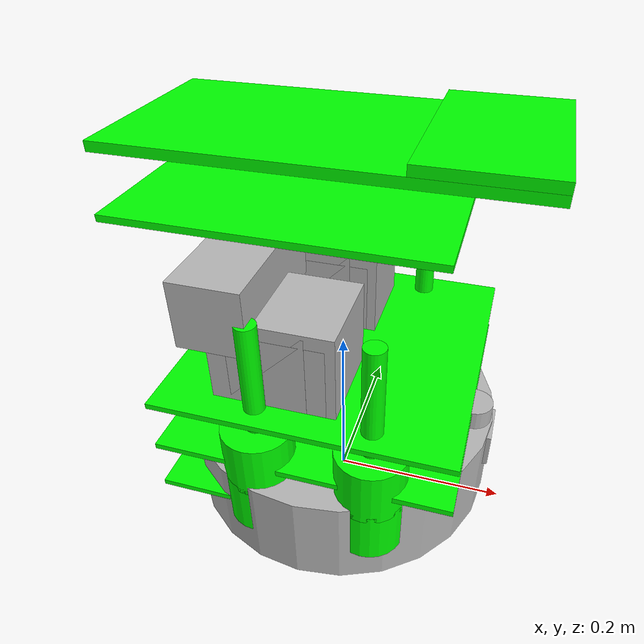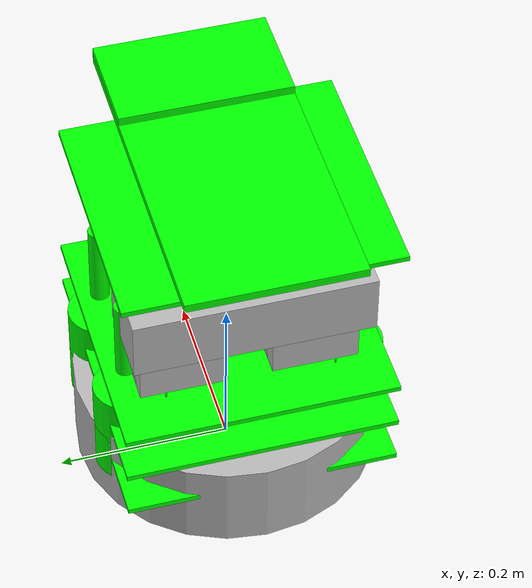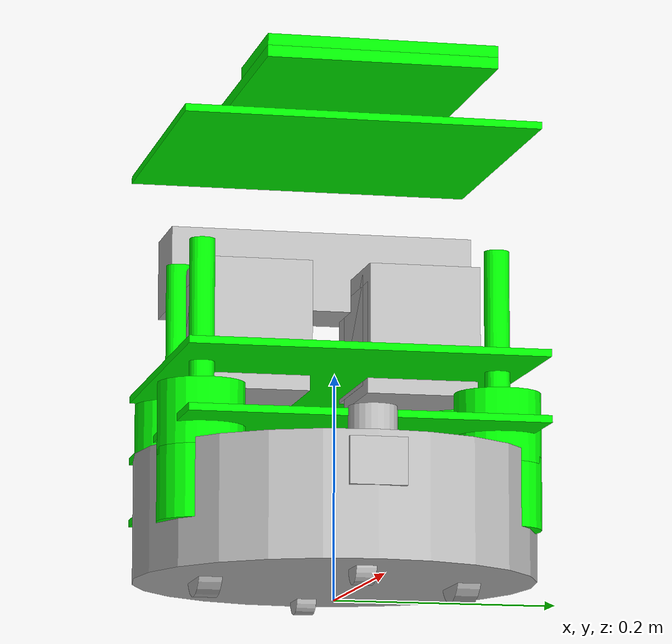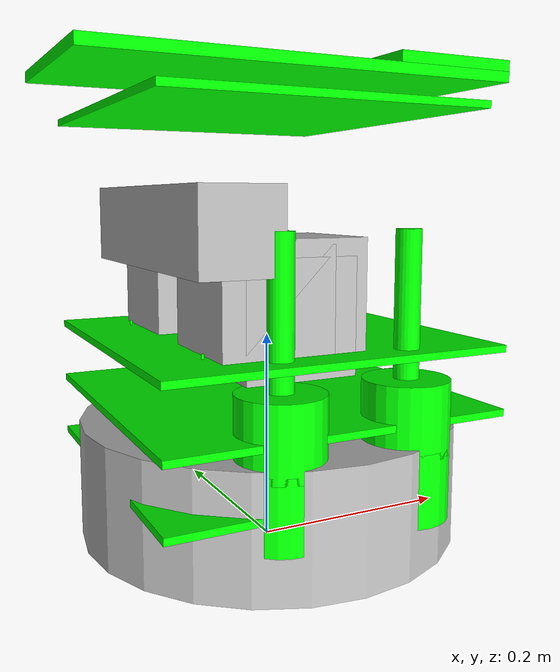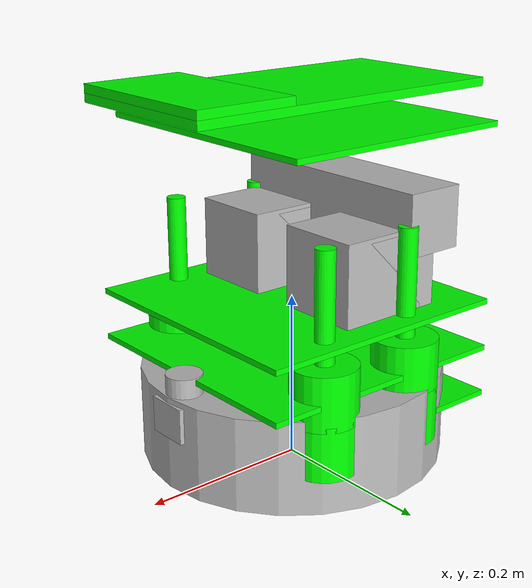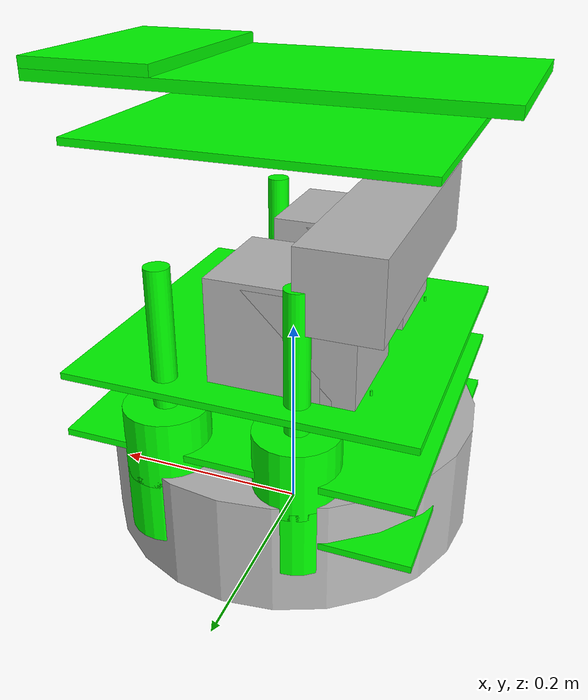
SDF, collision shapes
<?xml version="1.0" ?>
<sdf version="1.5">
  <model name="turtlebot">

    <link name="rack">
      <inertial>
        <pose>0.001453 -0.000453 0.029787 0 0 0</pose>
        <inertia>
          <ixx>0.058640</ixx>
          <ixy>0.000124</ixy>
          <ixz>0.000615</ixz>
          <iyy>0.058786</iyy>
          <iyz>0.000014</iyz>
          <izz>1.532440</izz>
       </inertia>
        <mass>2.234000</mass>
     </inertial>
	<collision name="tag1_collision">
          <pose>0 0 0.44 0 0 0</pose>
          <geometry>
            <box>
                <size>0.4 0.2 0.01</size>
           </box>
         </geometry>
       </collision>
        <visual name="tag1_visual">
          <pose>0 0 0.44 0 0 0</pose>
          <cast_shadows>true</cast_shadows>
          <geometry>
            <box>
                <size>0.4 0.2 0.01</size>
           </box>
         </geometry>
          <material>
            <diffuse>0 1 0 1</diffuse>
         </material>
       </visual>

        <collision name="tag2_collision">
          <pose>0.14 0 0.45 0 0 0</pose>
          <geometry>
            <box>
                <size>0.12 0.2 0.01</size>
           </box>
         </geometry>
       </collision>
        <visual name="tag2_visual">
          <pose>0.14 0 0.45 0 0 0</pose>
          <cast_shadows>true</cast_shadows>
          <geometry>
            <box>
                <size>0.12 0.2 0.01</size>
           </box>
         </geometry>
          <material>
            <diffuse>0 0 1 1</diffuse>
         </material>
       </visual>

      <collision name="plate_0_collision">
        <pose>-0.043340 0 0.084757 0 0 0</pose>
        <geometry>
          <box>
            <size>0.233502 0.314845 0.006401</size>
         </box>
       </geometry>
     </collision>
      <visual name="plate_0_visual">
        <pose>-0.043340 0 0.084757 0 0 0</pose>
        <geometry>
          <mesh>
            <uri>model://turtlebotJde2cam/meshes/plate_0_logo.dae</uri>
         </mesh>
       </geometry>
     </visual>
      <collision name="plate_1_collision">
        <pose>-0.002660 0 0.141907 0 0 0</pose>
        <geometry>
          <box>
            <size>0.314856 0.314856 0.006401</size>
         </box>
       </geometry>
     </collision>
      <visual name="plate_1_visual">
        <pose>-0.002660 0 0.141907 0 0 0</pose>
        <geometry>
          <mesh>
            <uri>model://turtlebotJde2cam/meshes/plate_1_logo.dae</uri>
         </mesh>
       </geometry>
     </visual>
      <collision name="plate_2_collision">
        <pose>-0.002660 0 0.199108 0 0 0</pose>
        <geometry>
          <box>
            <size>0.314856 0.314856 0.006401</size>
         </box>
       </geometry>
     </collision>
      <visual name="plate_2_visual">
        <pose>-0.002660 0 0.199108 0 0 0</pose>
        <geometry>
          <mesh>
            <uri>model://turtlebotJde2cam/meshes/plate_1_logo.dae</uri>
         </mesh>
       </geometry>
     </visual>
      <collision name="plate_3_collision">
        <pose>-0.015820 0 0.405457 0 0 0</pose>
        <geometry>
          <box>
            <size>0.288000 0.315000 0.006401</size>
         </box>
       </geometry>
     </collision>
      <visual name="plate_3_visual">
        <pose>-0.015820 0 0.405457 0 0 0</pose>
        <geometry>
          <mesh>
            <uri>model://turtlebotJde2cam/meshes/plate_2_logo.dae</uri>
         </mesh>
       </geometry>
     </visual>
      <collision name="spacer_0_collision">
        <pose>-0.002540 0.111468 0.079992 0 0 0</pose>
        <geometry>
          <cylinder>
            <radius>0.012700</radius>
            <length>0.003175</length>
         </cylinder>
       </geometry>
     </collision>
      <visual name="spacer_0_visual">
        <pose>-0.002540 0.111468 0.079992 0 0 0</pose>
        <geometry>
          <mesh>
            <uri>model://turtlebotJde2cam/meshes/68-02403-125_Spacer.dae</uri>
         </mesh>
       </geometry>
     </visual>
      <collision name="spacer_1_collision">
        <pose>-0.002540 -0.111468 0.079992 0 0 0</pose>
        <geometry>
          <cylinder>
            <radius>0.012700</radius>
            <length>0.003175</length>
         </cylinder>
       </geometry>
     </collision>
      <visual name="spacer_1_visual">
        <pose>-0.002540 -0.111468 0.079992 0 0 0</pose>
        <geometry>
          <mesh>
            <uri>model://turtlebotJde2cam/meshes/68-02403-125_Spacer.dae</uri>
         </mesh>
       </geometry>
     </visual>
      <collision name="spacer_2_collision">
        <pose>-0.072390 -0.111468 0.079992 0 0 0</pose>
        <geometry>
          <cylinder>
            <radius>0.012700</radius>
            <length>0.003175</length>
         </cylinder>
       </geometry>
     </collision>
      <visual name="spacer_2_visual">
        <pose>-0.072390 -0.111468 0.079992 0 0 0</pose>
        <geometry>
          <mesh>
            <uri>model://turtlebotJde2cam/meshes/68-02403-125_Spacer.dae</uri>
         </mesh>
       </geometry>
     </visual>
      <collision name="spacer_3_collision">
        <pose>-0.072390 0.111468 0.079992 0 0 0</pose>
        <geometry>
          <cylinder>
            <radius>0.012700</radius>
            <length>0.003175</length>
         </cylinder>
       </geometry>
     </collision>
      <visual name="spacer_3_visual">
        <pose>-0.072390 0.111468 0.079992 0 0 0</pose>
        <geometry>
          <mesh>
            <uri>model://turtlebotJde2cam/meshes/68-02403-125_Spacer.dae</uri>
         </mesh>
       </geometry>
     </visual>
      <collision name="standoff_2in_0_collision">
        <pose>0.067640 0.131420 0.087980 0 0 0</pose>
        <geometry>
          <cylinder>
            <radius>0.038100</radius>
            <length>0.063500</length>
         </cylinder>
       </geometry>
     </collision>
      <visual name="standoff_2in_0_visual">
        <pose>0.067640 0.131420 0.087980 0 0 0</pose>
        <geometry>
          <mesh>
            <uri>model://turtlebotJde2cam/meshes/68-04552-2000-RA_Turtlebot_M-F_Standoff.dae</uri>
         </mesh>
       </geometry>
     </visual>
      <collision name="standoff_2in_1_collision">
        <pose>0.067640 -0.131420 0.087980 0 0 0</pose>
        <geometry>
          <cylinder>
            <radius>0.038100</radius>
            <length>0.063500</length>
         </cylinder>
       </geometry>
     </collision>
      <visual name="standoff_2in_1_visual">
        <pose>0.067640 -0.131420 0.087980 0 0 0</pose>
        <geometry>
          <mesh>
            <uri>model://turtlebotJde2cam/meshes/68-04552-2000-RA_Turtlebot_M-F_Standoff.dae</uri>
         </mesh>
       </geometry>
     </visual>
      <collision name="standoff_2in_2_collision">
        <pose>-0.052832 -0.131420 0.087980 0 0 0</pose>
        <geometry>
          <cylinder>
            <radius>0.038100</radius>
            <length>0.063500</length>
         </cylinder>
       </geometry>
     </collision>
      <visual name="standoff_2in_2_visual">
        <pose>-0.052832 -0.131420 0.087980 0 0 0</pose>
        <geometry>
          <mesh>
            <uri>model://turtlebotJde2cam/meshes/68-04552-2000-RA_Turtlebot_M-F_Standoff.dae</uri>
         </mesh>
       </geometry>
     </visual>
      <collision name="standoff_2in_3_collision">
        <pose>-0.052832 0.131420 0.087980 0 0 0</pose>
        <geometry>
          <cylinder>
            <radius>0.038100</radius>
            <length>0.063500</length>
         </cylinder>
       </geometry>
     </collision>
      <visual name="standoff_2in_3_visual">
        <pose>-0.052832 0.131420 0.087980 0 0 0</pose>
        <geometry>
          <mesh>
            <uri>model://turtlebotJde2cam/meshes/68-04552-2000-RA_Turtlebot_M-F_Standoff.dae</uri>
         </mesh>
       </geometry>
     </visual>
      <collision name="standoff_2in_4_collision">
        <pose>0.067640 0.131420 0.145130 0 0 0</pose>
        <geometry>
          <cylinder>
            <radius>0.038100</radius>
            <length>0.063500</length>
         </cylinder>
       </geometry>
     </collision>
      <visual name="standoff_2in_4_visual">
        <pose>0.067640 0.131420 0.145130 0 0 0</pose>
        <geometry>
          <mesh>
            <uri>model://turtlebotJde2cam/meshes/68-04552-2000-RA_Turtlebot_M-F_Standoff.dae</uri>
         </mesh>
       </geometry>
     </visual>
      <collision name="standoff_2in_5_collision">
        <pose>0.067640 -0.131420 0.145130 0 0 0</pose>
        <geometry>
          <cylinder>
            <radius>0.038100</radius>
            <length>0.063500</length>
         </cylinder>
       </geometry>
     </collision>
      <visual name="standoff_2in_5_visual">
        <pose>0.067640 -0.131420 0.145130 0 0 0</pose>
        <geometry>
          <mesh>
            <uri>model://turtlebotJde2cam/meshes/68-04552-2000-RA_Turtlebot_M-F_Standoff.dae</uri>
         </mesh>
       </geometry>
     </visual>
      <collision name="standoff_2in_6_collision">
        <pose>-0.052832 -0.131420 0.145130 0 0 0</pose>
        <geometry>
          <cylinder>
            <radius>0.038100</radius>
            <length>0.063500</length>
         </cylinder>
       </geometry>
     </collision>
      <visual name="standoff_2in_6_visual">
        <pose>-0.052832 -0.131420 0.145130 0 0 0</pose>
        <geometry>
          <mesh>
            <uri>model://turtlebotJde2cam/meshes/68-04552-2000-RA_Turtlebot_M-F_Standoff.dae</uri>
         </mesh>
       </geometry>
     </visual>
      <collision name="standoff_2in_7_collision">
        <pose>-0.052832 0.131420 0.145130 0 0 0</pose>
        <geometry>
          <cylinder>
            <radius>0.038100</radius>
            <length>0.063500</length>
         </cylinder>
       </geometry>
     </collision>
      <visual name="standoff_2in_7_visual">
        <pose>-0.052832 0.131420 0.145130 0 0 0</pose>
        <geometry>
          <mesh>
            <uri>model://turtlebotJde2cam/meshes/68-04552-2000-RA_Turtlebot_M-F_Standoff.dae</uri>
         </mesh>
       </geometry>
     </visual>
      <collision name="standoff_8in_0_collision">
        <pose>0.067640 0.131420 0.202280 0 0 0</pose>
        <geometry>
          <cylinder>
            <radius>0.011113</radius>
            <length>0.203200</length>
         </cylinder>
       </geometry>
     </collision>
      <visual name="standoff_8in_0_visual">
        <pose>0.067640 0.131420 0.202280 0 0 0</pose>
        <geometry>
          <mesh>
            <uri>model://turtlebotJde2cam/meshes/68-02421-8000-RA_Turtlebot_F-F_Standoff.dae</uri>
         </mesh>
       </geometry>
     </visual>
      <collision name="standoff_8in_1_collision">
        <pose>0.067640 -0.131420 0.202280 0 0 0</pose>
        <geometry>
          <cylinder>
            <radius>0.011113</radius>
            <length>0.203200</length>
         </cylinder>
       </geometry>
     </collision>
      <visual name="standoff_8in_1_visual">
        <pose>0.067640 -0.131420 0.202280 0 0 0</pose>
        <geometry>
          <mesh>
            <uri>model://turtlebotJde2cam/meshes/68-02421-8000-RA_Turtlebot_F-F_Standoff.dae</uri>
         </mesh>
       </geometry>
     </visual>
      <collision name="standoff_8in_2_collision">
        <pose>-0.052832 -0.131420 0.202280 0 0 0</pose>
        <geometry>
          <cylinder>
            <radius>0.011113</radius>
            <length>0.203200</length>
         </cylinder>
       </geometry>
     </collision>
      <visual name="standoff_8in_2_visual">
        <pose>-0.052832 -0.131420 0.202280 0 0 0</pose>
        <geometry>
          <mesh>
            <uri>model://turtlebotJde2cam/meshes/68-02421-8000-RA_Turtlebot_F-F_Standoff.dae</uri>
         </mesh>
       </geometry>
     </visual>
      <collision name="standoff_8in_3_collision">
        <pose>-0.052832 0.131420 0.202280 0 0 0</pose>
        <geometry>
          <cylinder>
            <radius>0.011113</radius>
            <length>0.203200</length>
         </cylinder>
       </geometry>
     </collision>
      <visual name="standoff_8in_3_visual">
        <pose>-0.052832 0.131420 0.202280 0 0 0</pose>
        <geometry>
          <mesh>
            <uri>model://turtlebotJde2cam/meshes/68-02421-8000-RA_Turtlebot_F-F_Standoff.dae</uri>
         </mesh>
       </geometry>
     </visual>
      <collision name="standoff_kinect_0_collision">
        <pose>-0.105098 0.098000 0.202308 0 0 0</pose>
        <geometry>
          <cylinder>
            <radius>0.001111</radius>
            <length>0.008585</length>
         </cylinder>
       </geometry>
     </collision>
      <visual name="standoff_kinect_0_visual">
        <pose>-0.105098 0.098000 0.202308 0 0 0</pose>
        <geometry>
          <mesh>
            <uri>model://turtlebotJde2cam/meshes/68-04556-RA_Kinect_Standoff_Assy.dae</uri>
         </mesh>
       </geometry>
     </visual>
      <collision name="standoff_kinect_1_collision">
        <pose>-0.105098 -0.098000 0.202308 0 0 0</pose>
        <geometry>
          <cylinder>
            <radius>0.001111</radius>
            <length>0.008585</length>
         </cylinder>
       </geometry>
     </collision>
      <visual name="standoff_kinect_1_visual">
        <pose>-0.105098 -0.098000 0.202308 0 0 0</pose>
        <geometry>
          <mesh>
            <uri>model://turtlebotJde2cam/meshes/68-04556-RA_Kinect_Standoff_Assy.dae</uri>
         </mesh>
       </geometry>
     </visual>
   </link>
    <link name='laser'>
        <pose>0.155000 0.000000 0.112000 0.000000 0.000000 0.000000</pose>
        <gravity>0</gravity>
        <inertial>
          <mass>0.100000</mass>
          <inertia>
            <ixx>1.000000</ixx>
            <ixy>0.000000</ixy>
            <ixz>0.000000</ixz>
            <iyy>1.000000</iyy>
            <iyz>0.000000</iyz>
            <izz>1.000000</izz>
         </inertia>
       </inertial>
        <visual name='visual'>
          <geometry>
            <mesh>
              <uri>model://hokuyo/meshes/hokuyo.dae</uri>
           </mesh>
         </geometry>
       </visual>
        <collision name='collision-base'>
          <pose>0.000000 0.000000 -0.014500 0.000000 0.000000 0.000000</pose>
          <geometry>
            <box>
              <size>0.050000 0.050000 0.041000</size>
           </box>
         </geometry>
          <max_contacts>10</max_contacts>
          <surface>
            <bounce/>
            <friction>
              <ode/>
           </friction>
            <contact>
              <ode/>
           </contact>
         </surface>
       </collision>
        <collision name='collision-top'>
          <pose>0.000000 0.000000 0.020500 0.000000 0.000000 0.000000</pose>
          <geometry>
            <cylinder>
              <radius>0.021000</radius>
              <length>0.029000</length>
           </cylinder>
         </geometry>
          <max_contacts>10</max_contacts>
          <surface>
            <bounce/>
            <friction>
              <ode/>
           </friction>
            <contact>
              <ode/>
           </contact>
         </surface>
       </collision>
        <sensor name='laser' type='ray'>
          <ray>
            <scan>
              <horizontal>
                <samples>180</samples>
                <resolution>1.000000</resolution>
                <min_angle>-1.570000</min_angle>
                <max_angle>1.570000</max_angle>
             </horizontal>
           </scan>
            <range>
              <min>0.080000</min>
              <max>10.000000</max>
              <resolution>0.010000</resolution>
           </range>
         </ray>
          <update_rate>20.000000</update_rate>
          <always_on>1</always_on>
          <visualize>1</visualize>
      <plugin name="gazebo_ros_head_hokuyo_controller" filename="libgazebo_ros_laser.so">
        <topicName>/turtlebotROS/laser/scan</topicName>
        <frameName>hokuyo_link</frameName>
      </plugin>
       </sensor>
        <velocity_decay>
          <linear>0.000000</linear>
          <angular>0.000000</angular>
       </velocity_decay>
        <self_collide>0</self_collide>
        <kinematic>0</kinematic>
   </link>
    <link name='camera_bottom_body_left'>
        <pose>-0.030000 0.076000 0.232400 -1.570000 0.000000 0.000000</pose>
        <inertial>
          <mass>0.500000</mass>
          <inertia>
            <ixx>1.000000</ixx>
            <ixy>0.000000</ixy>
            <ixz>0.000000</ixz>
            <iyy>1.000000</iyy>
            <iyz>0.000000</iyz>
            <izz>1.000000</izz>
         </inertia>
       </inertial>
        <visual name='visual'>
          <geometry>
            <mesh>
              <uri>model://turtlebotJde2cam/meshes/sonyvid30/sonyvid30_bottom.dae</uri>
              <scale>4.000000 3.000000 3.000000</scale>
           </mesh>
         </geometry>
       </visual>
        <collision name='collision'>
          <geometry>
            <box>
              <size>0.100000 0.100000 0.100000</size>
           </box>
         </geometry>
          <surface>
            <friction>
              <ode>
                <mu>100000.000000</mu>
                <mu2>100000.000000</mu2>
                <slip1>0.000000</slip1>
                <slip2>0.000000</slip2>
             </ode>
           </friction>
            <bounce/>
            <contact>
              <ode/>
           </contact>
         </surface>
          <max_contacts>10</max_contacts>
       </collision>
        <velocity_decay>
          <linear>0.000000</linear>
          <angular>0.000000</angular>
       </velocity_decay>
        <self_collide>0</self_collide>
        <kinematic>0</kinematic>
        <gravity>1</gravity>
   </link>
    <link name='camera_column_body_left'>
        <pose>-0.020000 0.076000 0.247400 -1.570000 0.000000 0.000000</pose>
        <inertial>
          <mass>0.500000</mass>
          <inertia>
            <ixx>1.000000</ixx>
            <ixy>0.000000</ixy>
            <ixz>0.000000</ixz>
            <iyy>1.000000</iyy>
            <iyz>0.000000</iyz>
            <izz>1.000000</izz>
         </inertia>
       </inertial>
        <visual name='visual'>
          <geometry>
            <mesh>
              <uri>model://turtlebotJde2cam/meshes/sonyvid30/sonyvid30_mid.dae</uri>
              <scale>0.600000 1.000000 1.000000</scale>
           </mesh>
         </geometry>
       </visual>
        <collision name='collision'>
          <geometry>
            <box>
              <size>0.100000 0.100000 0.100000</size>
           </box>
         </geometry>
          <surface>
            <friction>
              <ode>
                <mu>100000.000000</mu>
                <mu2>100000.000000</mu2>
                <slip1>0.000000</slip1>
                <slip2>0.000000</slip2>
             </ode>
           </friction>
            <bounce/>
            <contact>
              <ode/>
           </contact>
         </surface>
          <max_contacts>10</max_contacts>
       </collision>
        <velocity_decay>
          <linear>0.000000</linear>
          <angular>0.000000</angular>
       </velocity_decay>
        <self_collide>0</self_collide>
        <kinematic>0</kinematic>
        <gravity>1</gravity>
   </link>
    <link name='camera_top_body_left'>
        <pose>-0.050000 0.076000 0.242400 -1.570000 -0.000000 3.140000</pose>
        <inertial>
          <mass>0.500000</mass>
          <inertia>
            <ixx>1.000000</ixx>
            <ixy>0.000000</ixy>
            <ixz>0.000000</ixz>
            <iyy>1.000000</iyy>
            <iyz>0.000000</iyz>
            <izz>1.000000</izz>
         </inertia>
       </inertial>
        <sensor name='cam_turtlebot_left' type='camera'>
          <pose>0.000000 0.000000 0.000000 -1.570000 -0.000000 3.140000</pose>
          <update_rate>20.000000</update_rate>
          <camera name='__default__'>
            <horizontal_fov>1.570000</horizontal_fov>
            <image>
              <width>640</width>
              <height>480</height>
              <format>R8G8B8</format>
           </image>
            <clip>
              <near>0.300000</near>
              <far>15.000000</far>
           </clip>
         </camera>
         <plugin name="camera_controller_left" filename="libgazebo_ros_camera.so">
        <alwaysOn>true</alwaysOn>
        <updateRate>0.0</updateRate>
        <cameraName>TurtlebotROS/cameraL</cameraName>
        <imageTopicName>image_raw</imageTopicName>
        <cameraInfoTopicName>camera_info</cameraInfoTopicName>
        <frameName>camera_link</frameName>
        <hackBaseline>0.07</hackBaseline>
        <distortionK1>0.0</distortionK1>
        <distortionK2>0.0</distortionK2>
        <distortionK3>0.0</distortionK3>
        <distortionT1>0.0</distortionT1>
        <distortionT2>0.0</distortionT2>
      </plugin>
       </sensor>
        <visual name='visual'>
          <geometry>
            <mesh>
              <uri>model://turtlebotJde2cam/meshes/sonyvid30/sonyvid30_top.dae</uri>
              <scale>2.000000 2.000000 1.300000</scale>
           </mesh>
         </geometry>
       </visual>
        <collision name='collision'>
          <geometry>
            <box>
              <size>0.100000 0.100000 0.100000</size>
           </box>
         </geometry>
          <surface>
            <friction>
              <ode>
                <mu>100000.000000</mu>
                <mu2>100000.000000</mu2>
                <slip1>0.000000</slip1>
                <slip2>0.000000</slip2>
             </ode>
           </friction>
            <bounce/>
            <contact>
              <ode/>
           </contact>
         </surface>
          <max_contacts>10</max_contacts>
       </collision>
        <velocity_decay>
          <linear>0.000000</linear>
          <angular>0.000000</angular>
       </velocity_decay>
        <self_collide>0</self_collide>
        <kinematic>0</kinematic>
        <gravity>1</gravity>
   </link>
    <link name='camera_bottom_body_right'>
        <pose>-0.030000 -0.076000 0.232400 -1.570000 0.000000 0.000000</pose>
        <inertial>
          <mass>0.500000</mass>
          <inertia>
            <ixx>1.000000</ixx>
            <ixy>0.000000</ixy>
            <ixz>0.000000</ixz>
            <iyy>1.000000</iyy>
            <iyz>0.000000</iyz>
            <izz>1.000000</izz>
         </inertia>
       </inertial>
        <visual name='visual'>
          <geometry>
            <mesh>
              <uri>model://turtlebotJde2cam/meshes/sonyvid30/sonyvid30_bottom.dae</uri>
              <scale>4.000000 3.000000 3.000000</scale>
           </mesh>
         </geometry>
       </visual>
        <collision name='collision'>
          <geometry>
            <box>
              <size>0.100000 0.100000 0.100000</size>
           </box>
         </geometry>
          <surface>
            <friction>
              <ode>
                <mu>100000.000000</mu>
                <mu2>100000.000000</mu2>
                <slip1>0.000000</slip1>
                <slip2>0.000000</slip2>
             </ode>
           </friction>
            <bounce/>
            <contact>
              <ode/>
           </contact>
         </surface>
          <max_contacts>10</max_contacts>
       </collision>
        <velocity_decay>
          <linear>0.000000</linear>
          <angular>0.000000</angular>
       </velocity_decay>
        <self_collide>0</self_collide>
        <kinematic>0</kinematic>
        <gravity>1</gravity>
   </link>
    <link name='camera_column_body_right'>
        <pose>-0.020000 -0.076000 0.247400 -1.570000 0.000000 0.000000</pose>
        <inertial>
          <mass>0.500000</mass>
          <inertia>
            <ixx>1.000000</ixx>
            <ixy>0.000000</ixy>
            <ixz>0.000000</ixz>
            <iyy>1.000000</iyy>
            <iyz>0.000000</iyz>
            <izz>1.000000</izz>
         </inertia>
       </inertial>
        <visual name='visual'>
          <geometry>
            <mesh>
              <uri>model://turtlebotJde2cam/meshes/sonyvid30/sonyvid30_mid.dae</uri>
              <scale>0.600000 1.000000 1.000000</scale>
           </mesh>
         </geometry>
       </visual>
        <collision name='collision'>
          <geometry>
            <box>
              <size>0.100000 0.100000 0.100000</size>
           </box>
         </geometry>
          <surface>
            <friction>
              <ode>
                <mu>100000.000000</mu>
                <mu2>100000.000000</mu2>
                <slip1>0.000000</slip1>
                <slip2>0.000000</slip2>
             </ode>
           </friction>
            <bounce/>
            <contact>
              <ode/>
           </contact>
         </surface>
          <max_contacts>10</max_contacts>
       </collision>
        <velocity_decay>
          <linear>0.000000</linear>
          <angular>0.000000</angular>
       </velocity_decay>
        <self_collide>0</self_collide>
        <kinematic>0</kinematic>
        <gravity>1</gravity>
   </link>
    <link name='camera_top_body_right'>
        <pose>-0.050000 -0.076000 0.242400 -1.570000 -0.000000 3.140000</pose>
        <inertial>
          <mass>0.500000</mass>
          <inertia>
            <ixx>1.000000</ixx>
            <ixy>0.000000</ixy>
            <ixz>0.000000</ixz>
            <iyy>1.000000</iyy>
            <iyz>0.000000</iyz>
            <izz>1.000000</izz>
         </inertia>
       </inertial>
        <sensor name='cam_turtlebot_right' type='camera'>
          <pose>0.000000 0.000000 0.000000 -1.570000 -0.000000 3.140000</pose>
          <update_rate>20.000000</update_rate>
          <camera name='__default__'>
            <horizontal_fov>1.570000</horizontal_fov>
            <image>
              <width>640</width>
              <height>480</height>
              <format>R8G8B8</format>
           </image>
            <clip>
              <near>0.300000</near>
              <far>15.000000</far>
           </clip>
         </camera>
         <plugin name="camera_controller_right" filename="libgazebo_ros_camera.so">
        <alwaysOn>true</alwaysOn>
        <updateRate>0.0</updateRate>
        <cameraName>TurtlebotROS/cameraR</cameraName>
        <imageTopicName>image_raw</imageTopicName>
        <cameraInfoTopicName>camera_info</cameraInfoTopicName>
        <frameName>camera_link</frameName>
        <hackBaseline>0.07</hackBaseline>
        <distortionK1>0.0</distortionK1>
        <distortionK2>0.0</distortionK2>
        <distortionK3>0.0</distortionK3>
        <distortionT1>0.0</distortionT1>
        <distortionT2>0.0</distortionT2>
      </plugin>
       </sensor>
        <visual name='visual'>
          <geometry>
            <mesh>
              <uri>model://turtlebotJde2cam/meshes/sonyvid30/sonyvid30_top.dae</uri>
              <scale>2.000000 2.000000 1.300000</scale>
           </mesh>
         </geometry>
       </visual>
        <collision name='collision'>
          <geometry>
            <box>
              <size>0.100000 0.100000 0.100000</size>
           </box>
         </geometry>
          <surface>
            <friction>
              <ode>
                <mu>100000.000000</mu>
                <mu2>100000.000000</mu2>
                <slip1>0.000000</slip1>
                <slip2>0.000000</slip2>
             </ode>
           </friction>
            <bounce/>
            <contact>
              <ode/>
           </contact>
         </surface>
          <max_contacts>10</max_contacts>
       </collision>
        <velocity_decay>
          <linear>0.000000</linear>
          <angular>0.000000</angular>
       </velocity_decay>
        <self_collide>0</self_collide>
        <kinematic>0</kinematic>
        <gravity>1</gravity>
   </link>
    <include>
      <uri>model://createROS</uri>
   </include>
    <include>
      <uri>model://kinect</uri>
      <pose>-0.087098 0 0.303857 0 0 0</pose>
   </include>
    <joint name="create_rack" type="revolute">
      <parent>kobukiJde_ros::base_footprint</parent>
      <child>rack</child>
      <axis>
        <xyz>0 0 1</xyz>
        <limit>
          <lower>0</lower>
          <upper>0</upper>
       </limit>
        <use_parent_model_frame>true</use_parent_model_frame>
     </axis>
   </joint>
    <joint name="kinect_rack" type="revolute">
      <parent>kinect::link</parent>
      <child>rack</child>
      <axis>
        <xyz>0 0 1</xyz>
        <limit>
          <lower>0</lower>
          <upper>0</upper>
       </limit>
        <use_parent_model_frame>true</use_parent_model_frame>
     </axis>
   </joint>
    <joint name='joint_laser' type='revolute'>
        <parent>rack</parent>
        <child>laser</child>
        <axis>
          <xyz>0.000000 0.000000 0.000000</xyz>
          <limit>
            <lower>0.000000</lower>
            <upper>0.000000</upper>
         </limit>
       </axis>
   </joint>
    <joint name='pan_joint_left' type='revolute'>
        <pose>0.000000 0.000000 0.000000 0.000000 0.000000 0.000000</pose>
        <child>camera_bottom_body_left</child>
        <parent>camera_column_body_left</parent>
        <axis>
          <xyz>0.000000 1.000000 0.000000</xyz>
          <limit>
            <lower>0.000000</lower>
            <upper>0.000000</upper>
         </limit>
       </axis>
   </joint>
    <joint name='tilt_joint_left' type='revolute'>
        <pose>0.000000 0.000000 0.000000 0.000000 0.000000 0.000000</pose>
        <child>camera_column_body_left</child>
        <parent>camera_top_body_left</parent>
        <axis>
          <xyz>1.000000 0.000000 0.000000</xyz>
          <limit>
            <lower>0.000000</lower>
            <upper>0.000000</upper>
         </limit>
       </axis>
   </joint>
    <joint name='camera_left' type='revolute'>
        <pose>0.000000 0.000000 0.000000 0.000000 0.000000 0.000000</pose>
        <child>camera_bottom_body_left</child>
        <parent>rack</parent>
        <axis>
          <xyz>0.000000 0.000000 0.000000</xyz>
          <limit>
            <lower>0.000000</lower>
            <upper>0.000000</upper>
         </limit>
       </axis>
   </joint>
    <joint name='pan_joint_right' type='revolute'>
        <pose>0.000000 0.000000 0.000000 0.000000 0.000000 0.000000</pose>
        <child>camera_bottom_body_right</child>
        <parent>camera_column_body_right</parent>
        <axis>
          <xyz>0.000000 1.000000 0.000000</xyz>
          <limit>
            <lower>0.000000</lower>
            <upper>0.000000</upper>
         </limit>
       </axis>
   </joint>
    <joint name='tilt_joint_right' type='revolute'>
        <pose>0.000000 0.000000 0.000000 0.000000 0.000000 0.000000</pose>
        <child>camera_column_body_right</child>
        <parent>camera_top_body_right</parent>
        <axis>
          <xyz>1.000000 0.000000 0.000000</xyz>
          <limit>
            <lower>0.000000</lower>
            <upper>0.000000</upper>
         </limit>
       </axis>
   </joint>
    <joint name='camera_right' type='revolute'>
        <pose>0.000000 0.000000 0.000000 0.000000 0.000000 0.000000</pose>
        <child>camera_bottom_body_right</child>
        <parent>rack</parent>
        <axis>
          <xyz>0.000000 0.000000 0.000000</xyz>
          <limit>
            <lower>0.000000</lower>
            <upper>0.000000</upper>
         </limit>
       </axis>
   </joint>
 </model>
</sdf>

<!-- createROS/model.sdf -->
<sdf version='1.6'>
  <model name='kobukiJde_ros'>
    <link name='base_footprint'>
      <pose frame=''>0 0 0 0 -0 0</pose>
      <inertial>
        <pose frame=''>0.009866 2.6e-05 0.010277 0 -0 0</pose>
        <mass>2.4213</mass>
        <inertia>
          <ixx>0.0224044</ixx>
          <ixy>-2.89213e-06</ixy>
          <ixz>4.10737e-06</ixz>
          <iyy>0.0226237</iyy>
          <iyz>-1.24762e-06</iyz>
          <izz>0.0394834</izz>
        </inertia>
      </inertial>
      <collision name='base_footprint_fixed_joint_lump__base_collision'>
        <pose frame=''>0 0 0.06969 0 -0 0</pose>
        <geometry>
          <cylinder>
            <length>0.10938</length>
            <radius>0.178</radius>
          </cylinder>
        </geometry>
      </collision>
      <collision name='base_footprint_fixed_joint_lump__caster_back_link_collision_1'>
        <pose frame=''>-0.135 0 0.0192 -1.5708 0 0</pose>
        <geometry>
          <cylinder>
            <length>0.0176</length>
            <radius>0.017</radius>
          </cylinder>
        </geometry>
        <surface>
          <contact>
            <ode>
              <kp>1e+06</kp>
              <kd>100</kd>
              <max_vel>1</max_vel>
              <min_depth>0.001</min_depth>
            </ode>
          </contact>
          <friction>
            <ode>
              <mu>0</mu>
              <mu2>0</mu2>
            </ode>
          </friction>
        </surface>
      </collision>
      <collision name='base_footprint_fixed_joint_lump__caster_front_link_collision_2'>
        <pose frame=''>0.115 0 0.0172 -1.5708 0 0</pose>
        <geometry>
          <cylinder>
            <length>0.0176</length>
            <radius>0.017</radius>
          </cylinder>
        </geometry>
        <surface>
          <contact>
            <ode>
              <kp>1e+06</kp>
              <kd>100</kd>
              <max_vel>1</max_vel>
              <min_depth>0.001</min_depth>
            </ode>
          </contact>
          <friction>
            <ode>
              <mu>0</mu>
              <mu2>0</mu2>
            </ode>
          </friction>
        </surface>
      </collision>
      <visual name='base_footprint_fixed_joint_lump__base_link_visual'>
        <pose frame=''>0.001 0 0.06219 0 -0 0</pose>
        <geometry>
          <mesh>
            <scale>1 1 1</scale>
            <uri>model://createROS/meshes/main_body.dae</uri>
          </mesh>
        </geometry>
        <material>
          <script>
            <uri>__default__</uri>
            <name>__default__</name>
          </script>
        </material>
      </visual>
      <velocity_decay/>
      <sensor name='bumpers' type='contact'>
        <always_on>1</always_on>
        <update_rate>50</update_rate>
        <visualize>1</visualize>
        <contact>
          <collision>base_footprint_fixed_joint_lump__base_collision</collision>
          <topic>__default_topic__</topic>
        </contact>
        <pose frame=''>0 0 0.0102 0 -0 0</pose>
      </sensor>
      <velocity_decay/>
      <velocity_decay/>
      <velocity_decay/>
      <sensor name='cliff_sensor_front' type='ray'>
        <always_on>1</always_on>
        <update_rate>50</update_rate>
        <visualize>1</visualize>
        <ray>
          <scan>
            <horizontal>
              <samples>50</samples>
              <resolution>1</resolution>
              <min_angle>-0.0436</min_angle>
              <max_angle>0.0436</max_angle>
            </horizontal>
          </scan>
          <range>
            <min>0.01</min>
            <max>0.15</max>
            <resolution>1</resolution>
          </range>
        </ray>
        <pose frame=''>0.156 0 0.0316 3.14159 1.57079 3.14159</pose>
      </sensor>
      <velocity_decay/>
      <sensor name='cliff_sensor_left' type='ray'>
        <always_on>1</always_on>
        <update_rate>50</update_rate>
        <visualize>1</visualize>
        <ray>
          <scan>
            <horizontal>
              <samples>50</samples>
              <resolution>1</resolution>
              <min_angle>-0.0436</min_angle>
              <max_angle>0.0436</max_angle>
            </horizontal>
          </scan>
          <range>
            <min>0.01</min>
            <max>0.15</max>
            <resolution>1</resolution>
          </range>
        </ray>
        <pose frame=''>0.08734 0.13601 0.0316 3.14159 1.57079 3.14159</pose>
      </sensor>
      <velocity_decay/>
      <sensor name='cliff_sensor_right' type='ray'>
        <always_on>1</always_on>
        <update_rate>50</update_rate>
        <visualize>1</visualize>
        <ray>
          <scan>
            <horizontal>
              <samples>50</samples>
              <resolution>1</resolution>
              <min_angle>-0.0436</min_angle>
              <max_angle>0.0436</max_angle>
            </horizontal>
          </scan>
          <range>
            <min>0.01</min>
            <max>0.15</max>
            <resolution>1</resolution>
          </range>
        </ray>
        <pose frame=''>0.085 -0.13601 0.0316 3.14159 1.57079 3.14159</pose>
      </sensor>
      <gravity>1</gravity>
      <velocity_decay/>
      <sensor name='imu' type='imu'>
        <always_on>1</always_on>
        <update_rate>50</update_rate>
        <visualize>0</visualize>
        <imu>
          <angular_velocity>
            <x>
              <noise type='gaussian'>
                <mean>0</mean>
                <stddev>1.96e-06</stddev>
                <bias_mean>0</bias_mean>
                <bias_stddev>0</bias_stddev>
              </noise>
            </x>
            <y>
              <noise type='gaussian'>
                <mean>0</mean>
                <stddev>1.96e-06</stddev>
                <bias_mean>0</bias_mean>
                <bias_stddev>0</bias_stddev>
              </noise>
            </y>
            <z>
              <noise type='gaussian'>
                <mean>0</mean>
                <stddev>1.96e-06</stddev>
                <bias_mean>0</bias_mean>
                <bias_stddev>0</bias_stddev>
              </noise>
            </z>
          </angular_velocity>
          <linear_acceleration>
            <x>
              <noise type='gaussian'>
                <mean>0</mean>
                <stddev>0.017</stddev>
                <bias_mean>0.1</bias_mean>
                <bias_stddev>0.001</bias_stddev>
              </noise>
            </x>
            <y>
              <noise type='gaussian'>
                <mean>0</mean>
                <stddev>0.017</stddev>
                <bias_mean>0.1</bias_mean>
                <bias_stddev>0.001</bias_stddev>
              </noise>
            </y>
            <z>
              <noise type='gaussian'>
                <mean>0</mean>
                <stddev>0.017</stddev>
                <bias_mean>0.1</bias_mean>
                <bias_stddev>0.001</bias_stddev>
              </noise>
            </z>
          </linear_acceleration>
        </imu>
        <pose frame=''>0.056 0.062 0.0304 0 -0 0</pose>
      </sensor>
    </link>
    <link name='wheel_left_link'>
      <pose frame=''>0 0.115 0.0352 -1.5708 0 0</pose>
      <inertial>
        <pose frame=''>0 0 0 0 -0 0</pose>
        <mass>0.01</mass>
        <inertia>
          <ixx>0.001</ixx>
          <ixy>0</ixy>
          <ixz>0</ixz>
          <iyy>0.001</iyy>
          <iyz>0</iyz>
          <izz>0.001</izz>
        </inertia>
      </inertial>
      <collision name='wheel_left_link_collision'>
        <pose frame=''>0 0 0 0 -0 0</pose>
        <geometry>
          <cylinder>
            <length>0.0206</length>
            <radius>0.0352</radius>
          </cylinder>
        </geometry>
        <surface>
          <contact>
            <ode>
              <kp>1e+06</kp>
              <kd>100</kd>
              <max_vel>1</max_vel>
              <min_depth>0.001</min_depth>
            </ode>
          </contact>
          <friction>
            <ode>
              <mu>1</mu>
              <mu2>1</mu2>
            </ode>
          </friction>
        </surface>
      </collision>
      <visual name='wheel_left_link_visual'>
        <pose frame=''>0 0 0 0 -0 0</pose>
        <geometry>
          <mesh>
            <scale>1 1 1</scale>
            <uri>model://createROS/meshes/wheel.dae</uri>
          </mesh>
        </geometry>
        <material>
          <script>
            <uri>__default__</uri>
            <name>__default__</name>
          </script>
        </material>
      </visual>
      <gravity>1</gravity>
      <velocity_decay/>
    </link>
    <joint name='wheel_left_joint' type='revolute'>
      <child>wheel_left_link</child>
      <parent>base_footprint</parent>
      <axis>
        <xyz>0 1 0</xyz>
        <limit>
          <lower>-1e+16</lower>
          <upper>1e+16</upper>
        </limit>
        <dynamics>
          <spring_reference>0</spring_reference>
          <spring_stiffness>0</spring_stiffness>
        </dynamics>
        <use_parent_model_frame>1</use_parent_model_frame>
      </axis>
    </joint>
    <link name='wheel_right_link'>
      <pose frame=''>0 -0.115 0.0352 -1.5708 0 0</pose>
      <inertial>
        <pose frame=''>0 0 0 0 -0 0</pose>
        <mass>0.01</mass>
        <inertia>
          <ixx>0.001</ixx>
          <ixy>0</ixy>
          <ixz>0</ixz>
          <iyy>0.001</iyy>
          <iyz>0</iyz>
          <izz>0.001</izz>
        </inertia>
      </inertial>
      <collision name='wheel_right_link_collision'>
        <pose frame=''>0 0 0 0 -0 0</pose>
        <geometry>
          <cylinder>
            <length>0.0206</length>
            <radius>0.035</radius>
          </cylinder>
        </geometry>
        <surface>
          <contact>
            <ode>
              <kp>1e+06</kp>
              <kd>100</kd>
              <max_vel>1</max_vel>
              <min_depth>0.001</min_depth>
            </ode>
          </contact>
          <friction>
            <ode>
              <mu>1</mu>
              <mu2>1</mu2>
            </ode>
          </friction>
        </surface>
      </collision>
      <visual name='wheel_right_link_visual'>
        <pose frame=''>0 0 0 0 -0 0</pose>
        <geometry>
          <mesh>
            <scale>1 1 1</scale>
            <uri>model://createROS/meshes/wheel.dae</uri>
          </mesh>
        </geometry>
        <material>
          <script>
            <uri>__default__</uri>
            <name>__default__</name>
          </script>
        </material>
      </visual>
      <gravity>1</gravity>
      <velocity_decay/>
    </link>
    <joint name='wheel_right_joint' type='revolute'>
      <child>wheel_right_link</child>
      <parent>base_footprint</parent>
      <axis>
        <xyz>0 1 0</xyz>
        <limit>
          <lower>-1e+16</lower>
          <upper>1e+16</upper>
        </limit>
        <dynamics>
          <spring_reference>0</spring_reference>
          <spring_stiffness>0</spring_stiffness>
        </dynamics>
        <use_parent_model_frame>1</use_parent_model_frame>
      </axis>
    </joint>
    <static>0</static>
    <plugin name='kobuki_controller' filename='libgazebo_ros_kobuki.so'>
      <publish_tf>1</publish_tf>
      <left_wheel_joint_name>wheel_left_joint</left_wheel_joint_name>
      <right_wheel_joint_name>wheel_right_joint</right_wheel_joint_name>
      <wheel_separation>.230</wheel_separation>
      <wheel_diameter>0.070</wheel_diameter>
      <torque>1.0</torque>
      <velocity_command_timeout>0.6</velocity_command_timeout>
      <cliff_sensor_left_name>cliff_sensor_left</cliff_sensor_left_name>
      <cliff_sensor_center_name>cliff_sensor_front</cliff_sensor_center_name>
      <cliff_sensor_right_name>cliff_sensor_right</cliff_sensor_right_name>
      <cliff_detection_threshold>0.04</cliff_detection_threshold>
      <bumper_name>bumpers</bumper_name>
      <imu_name>imu</imu_name>
    </plugin>
  </model>
</sdf>

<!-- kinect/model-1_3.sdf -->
<sdf version="1.3">
  <model name="kinect">
    <pose>0 0 0.036 0 0 0</pose>
    <link name="link">
      <inertial>
        <mass>0.1</mass>
    </inertial>

      <collision name="collision">
        <geometry>
          <box>
            <size>0.073000 0.276000 0.072000</size>
        </box>
      </geometry>
    </collision>
      <visual name="visual">
        <geometry>
          <mesh>
            <uri>model://kinect/meshes/kinect.dae</uri>
        </mesh>
      </geometry>
    </visual>

      <sensor name="camera" type="depth">
        <update_rate>20</update_rate>
        <camera>
          <horizontal_fov>1.047198</horizontal_fov>
          <image>
            <width>640</width>
            <height>480</height>
            <format>R8G8B8</format>
        </image>
          <clip>
            <near>0.05</near>
            <far>3</far>
        </clip>
      </camera>
    </sensor>
  </link>
</model>
</sdf>
